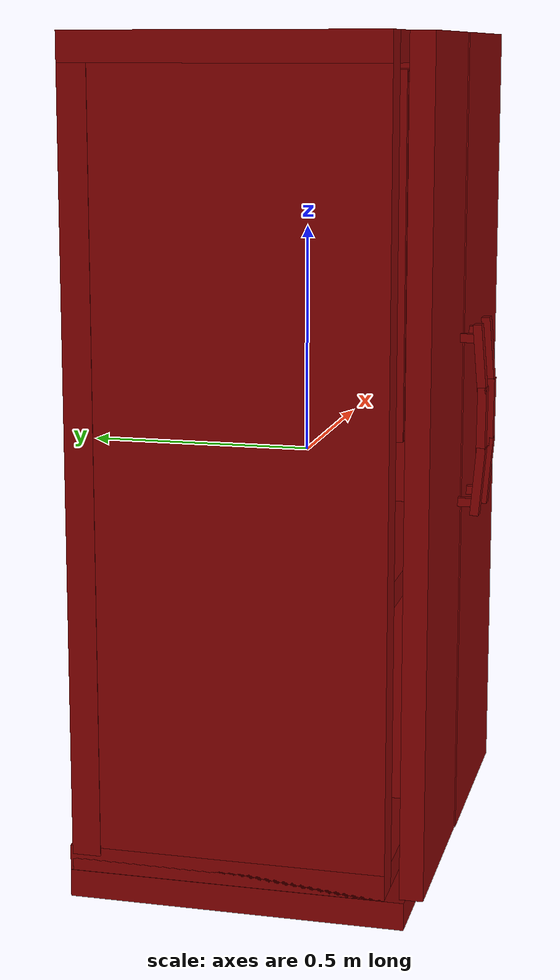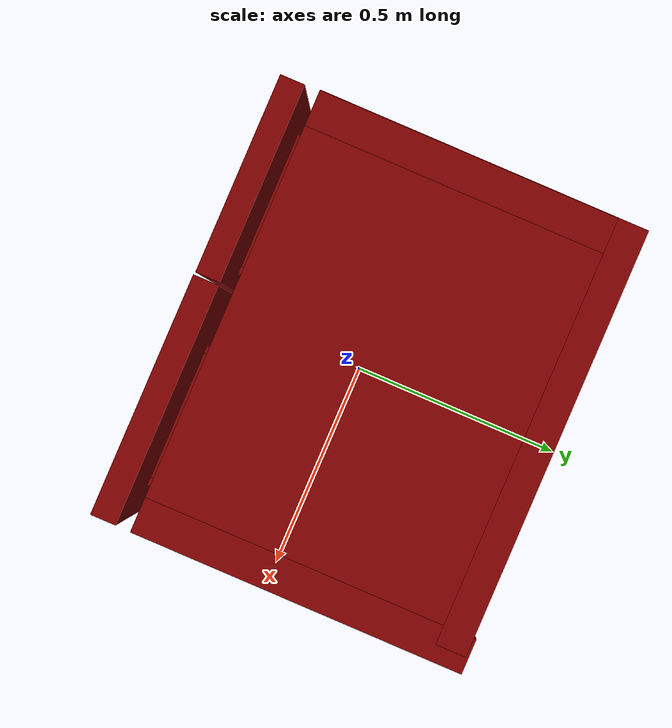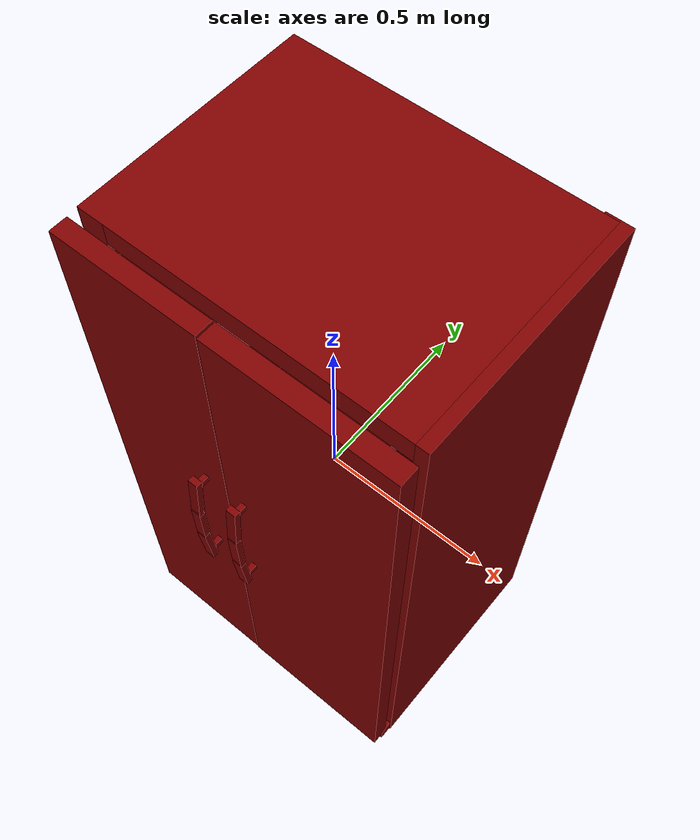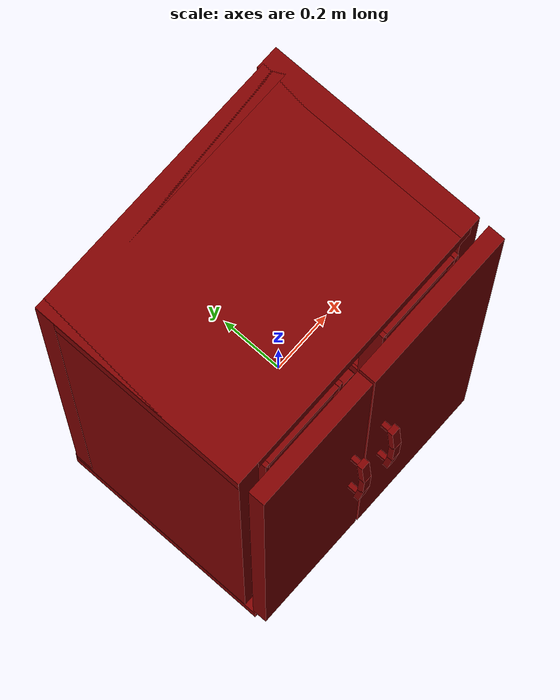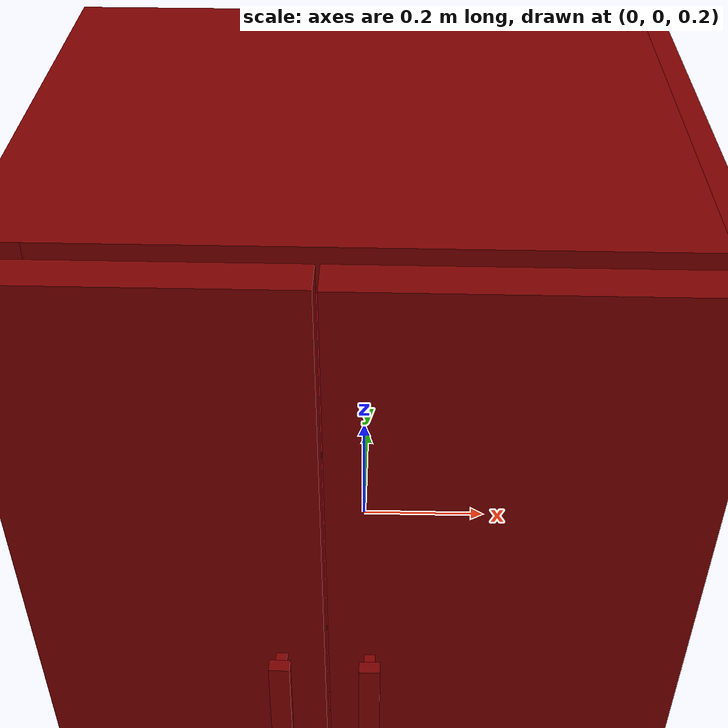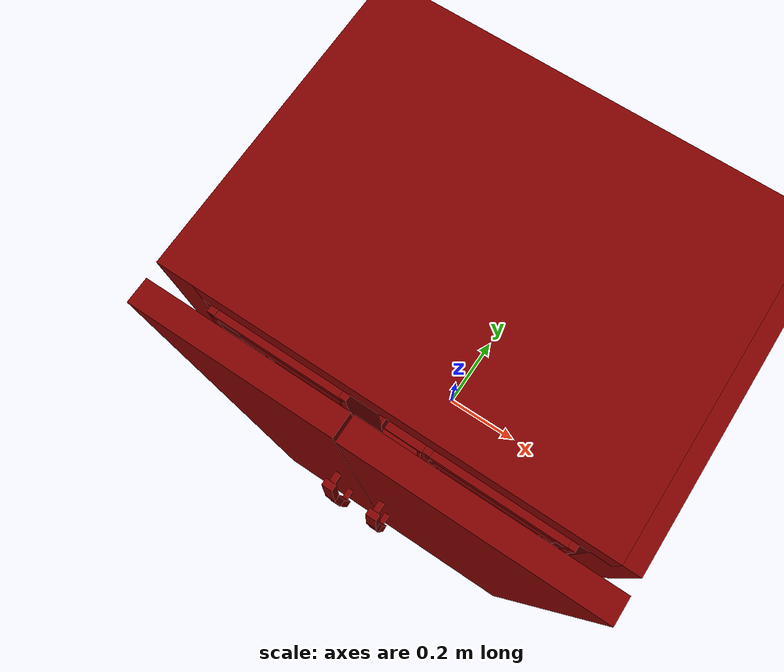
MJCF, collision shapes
<mujoco model="model">
  <compiler angle="radian"/>
  <asset>
    <mesh file="visuals/Body001.obj" name="Body001_vis"/>
    <mesh file="visuals/Body001_Clear.obj" name="Body001_Clear_vis"/>
    <mesh file="visuals/Door001.obj" name="Door001_vis"/>
    <mesh file="visuals/Door001_Clear.obj" name="Door001_Clear_vis"/>
    <mesh file="visuals/Door002.obj" name="Door002_vis"/>
    <mesh file="visuals/Door002_Clear.obj" name="Door002_Clear_vis"/>
    <mesh file="visuals/Drawer001.obj" name="Drawer001_vis"/>
    <mesh file="visuals/Drawer002.obj" name="Drawer002_vis"/>
    <mesh file="visuals/Drawer003.obj" name="Drawer003_vis"/>
    <mesh file="visuals/Drawer004.obj" name="Drawer004_vis"/>
    <texture file="visuals/T_BC001.png" name="Body001_material" type="2d"/>
    <material name="Body001_material" rgba="1 1 1 1.0" texture="Body001_material" shininess="0.141421377658844" specular="1"/>
    <material name="Body001_Clear_material" rgba="0.5879999995231628 0.5879999995231628 0.5879999995231628 0.29741376638412476" shininess="0.141421377658844" specular="0.3103448502657381"/>
    <texture file="visuals/T_BC001.png" name="Door001_material" type="2d"/>
    <material name="Door001_material" rgba="1 1 1 1.0" texture="Door001_material" shininess="0.141421377658844" specular="1"/>
    <material name="Door001_Clear_material" rgba="0.5879999995231628 0.5879999995231628 0.5879999995231628 0.29741376638412476" shininess="0.141421377658844" specular="0.3103448502657381"/>
    <texture file="visuals/T_BC001.png" name="Door002_material" type="2d"/>
    <material name="Door002_material" rgba="1 1 1 1.0" texture="Door002_material" shininess="0.141421377658844" specular="1"/>
    <material name="Door002_Clear_material" rgba="0.5879999995231628 0.5879999995231628 0.5879999995231628 0.29741376638412476" shininess="0.141421377658844" specular="0.3103448502657381"/>
    <texture file="visuals/T_BC001.png" name="Drawer001_material" type="2d"/>
    <material name="Drawer001_material" rgba="1 1 1 1.0" texture="Drawer001_material" shininess="0.141421377658844" specular="0.3103448502657381"/>
    <texture file="visuals/T_BC001.png" name="Drawer002_material" type="2d"/>
    <material name="Drawer002_material" rgba="1 1 1 1.0" texture="Drawer002_material" shininess="0.141421377658844" specular="0.3103448502657381"/>
    <texture file="visuals/T_BC001.png" name="Drawer003_material" type="2d"/>
    <material name="Drawer003_material" rgba="1 1 1 1.0" texture="Drawer003_material" shininess="0.141421377658844" specular="0.3103448502657381"/>
    <texture file="visuals/T_BC001.png" name="Drawer004_material" type="2d"/>
    <material name="Drawer004_material" rgba="1 1 1 1.0" texture="Drawer004_material" shininess="0.141421377658844" specular="0.3103448502657381"/>
  </asset>
  <default>
    <default class="visual">
      <geom conaffinity="0" contype="0" group="1" type="mesh"/>
    </default>
    <default class="collision">
      <geom group="0" rgba="0.5 0 0 0.5"/>
    </default>
    <default class="spawn">
      <geom group="0" rgba="1 1 1 0.5" contype="0" conaffinity="0"/>
      <site group="0" rgba="1 1 1 0.5"/>
    </default>
    <default class="region">
      <geom group="1" conaffinity="0" contype="0" rgba="0 1 0 0"/>
    </default>
  </default>
  <worldbody>
    <body>
      <body name="object">
        <geom mesh="Body001_vis" type="mesh" solimp="0.998 0.998 0.001" solref="0.001 1" density="100" friction="0.95 0.3 0.1" class="visual" material="Body001_material"/>
        <geom class="collision" type="box" pos="-0.016813 0.379462 0.048102" size="0.44352519512176514 0.0314674936234951 0.8702205419540405" quat="1.0 0.0 0.0 0.0"/>
        <geom class="collision" type="box" pos="0.423753 0.071677 -0.000588" size="0.03631758689880371 0.3445843458175659 0.918910562992096" quat="1.0 0.0 0.0 0.0"/>
        <geom class="collision" type="box" pos="-0.422666 0.069014 -0.000588" size="0.03669007867574692 0.3419218361377716 0.918910562992096" quat="1.0 0.0 0.0 0.0"/>
        <geom class="collision" type="box" pos="-0.016322 0.071677 -0.835899" size="0.4430340528488159 0.3445841372013092 0.03212868049740791" quat="1.0 0.0 0.0 0.0"/>
        <geom class="collision" type="box" pos="-0.001792 0.050878 -0.889336" size="0.4585462510585785 0.36538270115852356 0.0301620252430439" quat="1.0 0.0 0.0 0.0"/>
        <geom class="collision" type="box" pos="-0.016813 0.069014 0.886194" size="0.44352519512176514 0.3419215977191925 0.03212868049740791" quat="1.0 0.0 0.0 0.0"/>
        <geom class="collision" type="box" pos="0.012403 0.085535 0.470401" size="0.005047741811722517 0.2765035331249237 0.038640059530735016" quat="1.0 0.0 0.0 0.0"/>
        <geom class="collision" type="box" pos="0.403866 0.085535 0.596640" size="0.005047741811722517 0.27650344371795654 0.038640059530735016" quat="1.0 0.0 0.0 0.0"/>
        <geom class="collision" type="box" pos="-0.403149 0.085535 0.596640" size="0.005047741811722517 0.2765033543109894 0.038640059530735016" quat="1.0 0.0 0.0 0.0"/>
        <geom class="collision" type="box" pos="-0.403149 0.085535 0.265105" size="0.005047741811722517 0.27650323510169983 0.038640059530735016" quat="1.0 0.0 0.0 0.0"/>
        <geom class="collision" type="box" pos="0.403866 0.085535 0.265105" size="0.005047741811722517 0.27650314569473267 0.038640059530735016" quat="1.0 0.0 0.0 0.0"/>
        <geom class="collision" type="box" pos="0.012403 0.085535 0.088001" size="0.005047741811722517 0.2765030562877655 0.038640059530735016" quat="1.0 0.0 0.0 0.0"/>
        <geom class="collision" type="box" pos="-0.000258 0.063180 -0.531782" size="0.0197968240827322 0.29134079813957214 0.2769729793071747" quat="1.0 0.0 0.0 0.0"/>
        <geom class="collision" type="box" pos="0.378157 0.085535 0.470401" size="0.005047741811722517 0.2764974534511566 0.038640059530735016" quat="1.0 0.0 0.0 0.0"/>
        <geom class="collision" type="box" pos="0.378157 0.085535 0.088001" size="0.005047741811722517 0.27649736404418945 0.038640059530735016" quat="1.0 0.0 0.0 0.0"/>
        <geom class="collision" type="box" pos="-0.376981 0.085535 0.470401" size="0.005047741811722517 0.2764972448348999 0.038640059530735016" quat="1.0 0.0 0.0 0.0"/>
        <geom class="collision" type="box" pos="-0.376981 0.085535 0.088001" size="0.005047741811722517 0.27649715542793274 0.038640059530735016" quat="1.0 0.0 0.0 0.0"/>
        <geom class="collision" type="box" pos="0.000534 0.047458 -0.227722" size="0.3867919147014618 0.31467971205711365 0.028097080066800117" quat="1.0 0.0 0.0 0.0"/>
        <body name="Body001_Clear">
          <geom mesh="Body001_Clear_vis" type="mesh" solimp="0.998 0.998 0.001" solref="0.001 1" density="100" friction="0.95 0.3 0.1" class="visual" material="Body001_Clear_material"/>
          <geom class="collision" type="box" pos="0.000534 0.065049 0.511956" size="0.378988653421402 0.2545841336250305 0.005309588275849819" quat="1.0 0.0 0.0 0.0"/>
          <geom class="collision" type="box" pos="0.000534 0.065049 0.129181" size="0.378988653421402 0.2545841336250305 0.005309588275849819" quat="1.0 0.0 0.0 0.0"/>
        </body>
        <body name="Door001">
          <joint axis="0.0 0.0 -1.0" pos="-0.423318 -0.319173 0.016850" limited="true" name="Door001_joint" range="0.0 1.5707963267948966" type="hinge" damping="1" frictionloss="1" armature=".01" stiffness="0.05"/>
          <geom mesh="Door001_vis" type="mesh" solimp="0.998 0.998 0.001" solref="0.001 1" density="100" friction="0.95 0.3 0.1" class="visual" material="Door001_material"/>
          <geom class="collision" type="box" pos="-0.106302 -0.375204 0.279242" size="0.007846962660551071 0.015974657610058784 0.009277479723095894" quat="1.0 0.0 0.0 0.0"/>
          <geom class="collision" type="box" pos="-0.106302 -0.375204 -0.078084" size="0.007846971973776817 0.015974663197994232 0.009277488104999065" quat="1.0 0.0 0.0 0.0"/>
          <geom class="collision" type="box" pos="-0.105881 -0.401880 0.234784" size="0.014525260776281357 0.0745832622051239 0.00947658997029066" quat="0.7363455891609192 0.6766056418418884 0.0 0.0"/>
          <geom class="collision" type="box" pos="-0.105881 -0.402342 -0.030556" size="0.014525260776281357 0.0745832622051239 0.00947658997029066" quat="5.559254034892547e-08 5.108230993755569e-08 0.7363455295562744 -0.6766057014465332"/>
          <geom class="collision" type="box" pos="-0.105881 -0.407845 0.099962" size="0.014525260776281357 0.0745718777179718 0.009477976709604263" quat="5.366500488435122e-08 5.310367257038706e-08 0.7108145952224731 -0.7033794522285461"/>
          <geom class="collision" type="box" pos="-0.251870 -0.329248 0.032009" size="0.20573735237121582 0.02541668713092804 0.8842538595199585" quat="1.0 0.0 0.0 0.0"/>
          <geom class="collision" type="box" pos="-0.085526 -0.250404 0.470303" size="0.007261377759277821 0.03443215787410736 0.37151971459388733" quat="1.0 0.0 0.0 0.0"/>
          <geom class="collision" type="box" pos="-0.364501 -0.250404 0.470303" size="0.007261377759277821 0.034432169049978256 0.3715198338031769" quat="1.0 0.0 0.0 0.0"/>
          <geom class="collision" type="box" pos="-0.225633 -0.250404 0.109957" size="0.13923145830631256 0.03443232923746109 0.010292775928974152" quat="1.0 0.0 0.0 0.0"/>
          <geom class="collision" type="box" pos="-0.225633 -0.250404 0.827790" size="0.13923145830631256 0.034432314336299896 0.010292775928974152" quat="1.0 0.0 0.0 0.0"/>
          <body name="Door001_Clear">
            <geom mesh="Door001_Clear_vis" type="mesh" solimp="0.998 0.998 0.001" solref="0.001 1" density="100" friction="0.95 0.3 0.1" class="visual" material="Door001_Clear_material"/>
            <geom class="collision" type="box" pos="-0.093978 -0.204533 0.218605" size="0.0037849699147045612 0.062309809029102325 0.03261616453528404" quat="1.0 0.0 0.0 0.0"/>
            <geom class="collision" type="box" pos="-0.353908 -0.204533 0.218605" size="0.003784970613196492 0.06230982393026352 0.03261616453528404" quat="1.0 0.0 0.0 0.0"/>
            <geom class="collision" type="box" pos="-0.223999 -0.146567 0.218605" size="0.1338050216436386 0.0022211563773453236 0.03261615335941315" quat="1.0 0.0 0.0 0.0"/>
            <geom class="collision" type="box" pos="-0.223999 -0.205615 0.188631" size="0.133805051445961 0.05933448672294617 0.00264250161126256" quat="1.0 0.0 0.0 0.0"/>
            <geom class="collision" type="box" pos="-0.223999 -0.265888 0.218605" size="0.1338050812482834 0.002221157308667898 0.03261615335941315" quat="1.0 0.0 0.0 0.0"/>
            <geom class="collision" type="box" pos="-0.093978 -0.204533 0.452297" size="0.003784974105656147 0.06230989471077919 0.03261616453528404" quat="1.0 0.0 0.0 0.0"/>
            <geom class="collision" type="box" pos="-0.353908 -0.204533 0.452297" size="0.0037849750369787216 0.062309909611940384 0.03261616453528404" quat="1.0 0.0 0.0 0.0"/>
            <geom class="collision" type="box" pos="-0.223999 -0.146567 0.452297" size="0.13380515575408936 0.0022211589384824038 0.03261615335941315" quat="1.0 0.0 0.0 0.0"/>
            <geom class="collision" type="box" pos="-0.223999 -0.205615 0.422323" size="0.13380518555641174 0.05933448672294617 0.00264250161126256" quat="1.0 0.0 0.0 0.0"/>
            <geom class="collision" type="box" pos="-0.223999 -0.265888 0.452297" size="0.13380521535873413 0.0022211598698049784 0.03261615335941315" quat="1.0 0.0 0.0 0.0"/>
            <geom class="collision" type="box" pos="-0.093978 -0.204533 0.680773" size="0.0037849785294383764 0.062309976667165756 0.03261616453528404" quat="1.0 0.0 0.0 0.0"/>
            <geom class="collision" type="box" pos="-0.353908 -0.204533 0.680773" size="0.003784979460760951 0.06230999529361725 0.03261616453528404" quat="1.0 0.0 0.0 0.0"/>
            <geom class="collision" type="box" pos="-0.223999 -0.146567 0.680773" size="0.1338052898645401 0.002221161499619484 0.03261615335941315" quat="1.0 0.0 0.0 0.0"/>
            <geom class="collision" type="box" pos="-0.223999 -0.205615 0.650799" size="0.1338053196668625 0.05933448672294617 0.00264250161126256" quat="1.0 0.0 0.0 0.0"/>
            <geom class="collision" type="box" pos="-0.223999 -0.265888 0.680773" size="0.13380534946918488 0.0022211626637727022 0.03261615335941315" quat="1.0 0.0 0.0 0.0"/>
          </body>
        </body>
        <body name="Door002">
          <joint axis="0.0 0.0 1.0" pos="0.422461 -0.326290 0.016850" limited="true" name="Door002_joint" range="0.0 1.5707963267948966" type="hinge" damping="1" frictionloss="1" armature=".01" stiffness="0.05"/>
          <geom mesh="Door002_vis" type="mesh" solimp="0.998 0.998 0.001" solref="0.001 1" density="100" friction="0.95 0.3 0.1" class="visual" material="Door002_material"/>
          <geom class="collision" type="box" pos="0.018584 -0.407845 0.099962" size="0.014525260776281357 0.0745718777179718 0.009477976709604263" quat="5.366500488435122e-08 5.310367257038706e-08 0.7108145952224731 -0.7033794522285461"/>
          <geom class="collision" type="box" pos="0.018584 -0.402342 -0.030556" size="0.014525260776281357 0.0745832622051239 0.00947658997029066" quat="5.559254034892547e-08 5.108230993755569e-08 0.7363455295562744 -0.6766057014465332"/>
          <geom class="collision" type="box" pos="0.018584 -0.401880 0.234784" size="0.014525260776281357 0.0745832622051239 0.00947658997029066" quat="0.7363455891609192 0.6766056418418884 0.0 0.0"/>
          <geom class="collision" type="box" pos="0.018163 -0.375204 -0.078084" size="0.007846980355679989 0.01597466692328453 0.009277496486902237" quat="1.0 0.0 0.0 0.0"/>
          <geom class="collision" type="box" pos="0.018163 -0.375204 0.279242" size="0.007846989668905735 0.01597467064857483 0.009277504868805408" quat="1.0 0.0 0.0 0.0"/>
          <geom class="collision" type="box" pos="0.209599 -0.330205 0.032009" size="0.2497742474079132 0.026373526081442833 0.8842542171478271" quat="1.0 0.0 0.0 0.0"/>
          <geom class="collision" type="box" pos="0.362589 -0.250404 0.470303" size="0.007261377759277821 0.03443220630288124 0.37152010202407837" quat="1.0 0.0 0.0 0.0"/>
          <geom class="collision" type="box" pos="0.083614 -0.250404 0.470303" size="0.007261377759277821 0.034432217478752136 0.3715202212333679" quat="1.0 0.0 0.0 0.0"/>
          <geom class="collision" type="box" pos="0.222481 -0.250404 0.109957" size="0.13923145830631256 0.03443228080868721 0.010292775928974152" quat="1.0 0.0 0.0 0.0"/>
          <geom class="collision" type="box" pos="0.222481 -0.250404 0.827790" size="0.13923145830631256 0.034432265907526016 0.010292775928974152" quat="1.0 0.0 0.0 0.0"/>
          <body name="Door002_Clear">
            <geom mesh="Door002_Clear_vis" type="mesh" solimp="0.998 0.998 0.001" solref="0.001 1" density="100" friction="0.95 0.3 0.1" class="visual" material="Door002_Clear_material"/>
            <geom class="collision" type="box" pos="0.354272 -0.204533 0.680773" size="0.003784982953220606 0.06231006234884262 0.03261616453528404" quat="1.0 0.0 0.0 0.0"/>
            <geom class="collision" type="box" pos="0.354272 -0.204533 0.452297" size="0.003784983651712537 0.062310077250003815 0.03261616453528404" quat="1.0 0.0 0.0 0.0"/>
            <geom class="collision" type="box" pos="0.354272 -0.204533 0.218605" size="0.0037849845830351114 0.06231009587645531 0.03261616453528404" quat="1.0 0.0 0.0 0.0"/>
            <geom class="collision" type="box" pos="0.094342 -0.204533 0.680773" size="0.003784985514357686 0.0623101107776165 0.03261616453528404" quat="1.0 0.0 0.0 0.0"/>
            <geom class="collision" type="box" pos="0.094342 -0.204533 0.452297" size="0.0037849864456802607 0.06231012940406799 0.03261616453528404" quat="1.0 0.0 0.0 0.0"/>
            <geom class="collision" type="box" pos="0.094342 -0.204533 0.218605" size="0.0037849871441721916 0.06231014430522919 0.03261616453528404" quat="1.0 0.0 0.0 0.0"/>
            <geom class="collision" type="box" pos="0.224250 -0.146567 0.680773" size="0.1338055431842804 0.002221166156232357 0.03261615335941315" quat="1.0 0.0 0.0 0.0"/>
            <geom class="collision" type="box" pos="0.224250 -0.146567 0.452297" size="0.13380557298660278 0.002221166854724288 0.03261615335941315" quat="1.0 0.0 0.0 0.0"/>
            <geom class="collision" type="box" pos="0.224250 -0.146567 0.218605" size="0.13380560278892517 0.0022211673203855753 0.03261615335941315" quat="1.0 0.0 0.0 0.0"/>
            <geom class="collision" type="box" pos="0.224250 -0.205615 0.650799" size="0.13380563259124756 0.05933448672294617 0.00264250161126256" quat="1.0 0.0 0.0 0.0"/>
            <geom class="collision" type="box" pos="0.224250 -0.205615 0.422323" size="0.13380566239356995 0.05933448672294617 0.00264250161126256" quat="1.0 0.0 0.0 0.0"/>
            <geom class="collision" type="box" pos="0.224250 -0.205615 0.188631" size="0.13380569219589233 0.05933448672294617 0.00264250161126256" quat="1.0 0.0 0.0 0.0"/>
            <geom class="collision" type="box" pos="0.224250 -0.265888 0.680773" size="0.13380572199821472 0.002221169415861368 0.03261615335941315" quat="1.0 0.0 0.0 0.0"/>
            <geom class="collision" type="box" pos="0.224250 -0.265888 0.452297" size="0.13380573689937592 0.0022211698815226555 0.03261615335941315" quat="1.0 0.0 0.0 0.0"/>
            <geom class="collision" type="box" pos="0.224250 -0.265888 0.218605" size="0.1338057667016983 0.002221170347183943 0.03261615335941315" quat="1.0 0.0 0.0 0.0"/>
          </body>
        </body>
        <body name="Drawer001">
          <joint axis="0.0 -1.0 0.0" pos="-0.214321 0.095208 -0.665632" limited="true" name="Drawer001_joint" range="0.0 0.5" type="slide" damping="1" frictionloss="1" armature=".01" stiffness="0.05"/>
          <geom mesh="Drawer001_vis" type="mesh" solimp="0.998 0.998 0.001" solref="0.001 1" density="100" friction="0.95 0.3 0.1" class="visual" material="Drawer001_material"/>
          <geom class="collision" type="box" pos="-0.201648 -0.125722 -0.675150" size="0.17529380321502686 0.009535386227071285 0.10549026727676392" quat="1.0 0.0 0.0 0.0"/>
          <geom class="collision" type="box" pos="-0.035094 0.099171 -0.679897" size="0.0024029072374105453 0.224361851811409 0.10074390470981598" quat="1.0 0.0 0.0 0.0"/>
          <geom class="collision" type="box" pos="-0.366646 0.099171 -0.679897" size="0.0024029070045799017 0.22436189651489258 0.10074392706155777" quat="1.0 0.0 0.0 0.0"/>
          <geom class="collision" type="box" pos="-0.201703 0.101895 -0.776427" size="0.1682136207818985 0.2199821025133133 0.00421486608684063" quat="1.0 0.0 0.0 0.0"/>
          <geom class="collision" type="box" pos="-0.201447 0.322440 -0.679897" size="0.1689746230840683 0.002896369667723775 0.10074396431446075" quat="1.0 0.0 0.0 0.0"/>
        </body>
        <body name="Drawer002">
          <joint axis="0.0 -1.0 0.0" pos="-0.214321 0.095208 -0.402467" limited="true" name="Drawer002_joint" range="0.0 0.5" type="slide" damping="1" frictionloss="1" armature=".01" stiffness="0.05"/>
          <geom mesh="Drawer002_vis" type="mesh" solimp="0.998 0.998 0.001" solref="0.001 1" density="100" friction="0.95 0.3 0.1" class="visual" material="Drawer002_material"/>
          <geom class="collision" type="box" pos="-0.201447 0.322440 -0.417543" size="0.16897465288639069 0.002896370366215706 0.10074398666620255" quat="1.0 0.0 0.0 0.0"/>
          <geom class="collision" type="box" pos="-0.201703 0.101895 -0.514073" size="0.16821372509002686 0.21998222172260284 0.004214870277792215" quat="1.0 0.0 0.0 0.0"/>
          <geom class="collision" type="box" pos="-0.366646 0.099171 -0.417543" size="0.002402909565716982 0.2243621051311493 0.10074403136968613" quat="1.0 0.0 0.0 0.0"/>
          <geom class="collision" type="box" pos="-0.035094 0.099171 -0.417543" size="0.0024029111955314875 0.22436214983463287 0.10074404627084732" quat="1.0 0.0 0.0 0.0"/>
          <geom class="collision" type="box" pos="-0.201648 -0.125722 -0.412797" size="0.17529411613941193 0.009535410441458225 0.10549045354127884" quat="1.0 0.0 0.0 0.0"/>
        </body>
        <body name="Drawer003">
          <joint axis="0.0 -1.0 0.0" pos="0.214712 0.095208 -0.665632" limited="true" name="Drawer003_joint" range="0.0 0.5" type="slide" damping="1" frictionloss="1" armature=".01" stiffness="0.05"/>
          <geom mesh="Drawer003_vis" type="mesh" solimp="0.998 0.998 0.001" solref="0.001 1" density="100" friction="0.95 0.3 0.1" class="visual" material="Drawer003_material"/>
          <geom class="collision" type="box" pos="0.202834 0.322440 -0.679897" size="0.16982869803905487 0.0028963638469576836 0.10074378550052643" quat="1.0 0.0 0.0 0.0"/>
          <geom class="collision" type="box" pos="0.202579 0.101895 -0.776427" size="0.16906775534152985 0.21998180449008942 0.004214857239276171" quat="1.0 0.0 0.0 0.0"/>
          <geom class="collision" type="box" pos="0.036781 0.099171 -0.679897" size="0.0024029051419347525 0.22436168789863586 0.10074382275342941" quat="1.0 0.0 0.0 0.0"/>
          <geom class="collision" type="box" pos="0.370042 0.099171 -0.679897" size="0.002402905374765396 0.22436171770095825 0.1007438451051712" quat="1.0 0.0 0.0 0.0"/>
          <geom class="collision" type="box" pos="0.202633 -0.125722 -0.675150" size="0.1761481612920761 0.009535383433103561 0.10549024492502213" quat="1.0 0.0 0.0 0.0"/>
        </body>
        <body name="Drawer004">
          <joint axis="0.0 -1.0 0.0" pos="0.214712 0.095208 -0.402467" limited="true" name="Drawer004_joint" range="0.0 0.5" type="slide" damping="1" frictionloss="1" armature=".01" stiffness="0.05"/>
          <geom mesh="Drawer004_vis" type="mesh" solimp="0.998 0.998 0.001" solref="0.001 1" density="100" friction="0.95 0.3 0.1" class="visual" material="Drawer004_material"/>
          <geom class="collision" type="box" pos="0.202633 -0.125722 -0.412797" size="0.17614784836769104 0.009535360150039196 0.1054900586605072" quat="1.0 0.0 0.0 0.0"/>
          <geom class="collision" type="box" pos="0.370042 0.099171 -0.417543" size="0.0024029016494750977 0.22436143457889557 0.10074370354413986" quat="1.0 0.0 0.0 0.0"/>
          <geom class="collision" type="box" pos="0.036781 0.099171 -0.417543" size="0.0024029023479670286 0.22436146438121796 0.10074371844530106" quat="1.0 0.0 0.0 0.0"/>
          <geom class="collision" type="box" pos="0.202579 0.101895 -0.514073" size="0.1690676510334015 0.21998168528079987 0.004214853513985872" quat="1.0 0.0 0.0 0.0"/>
          <geom class="collision" type="box" pos="0.202834 0.322440 -0.417543" size="0.16982866823673248 0.0028963631484657526 0.10074376314878464" quat="1.0 0.0 0.0 0.0"/>
        </body>
        <geom class="region" name="reg_main" type="box" pos="-5.000000000143778e-07 0.026825500000000002 0.0" size="0.4603375 0.3894275 0.919498"/>
      </body>
    </body>
  </worldbody>
  <actuator>
    <motor name="Door001_joint_actuator" joint="Door001_joint" gear="50"/>
    <motor name="Door002_joint_actuator" joint="Door002_joint" gear="50"/>
    <motor name="Drawer001_joint_actuator" joint="Drawer001_joint" gear="50"/>
    <motor name="Drawer002_joint_actuator" joint="Drawer002_joint" gear="50"/>
    <motor name="Drawer003_joint_actuator" joint="Drawer003_joint" gear="50"/>
    <motor name="Drawer004_joint_actuator" joint="Drawer004_joint" gear="50"/>
  </actuator>
</mujoco>
